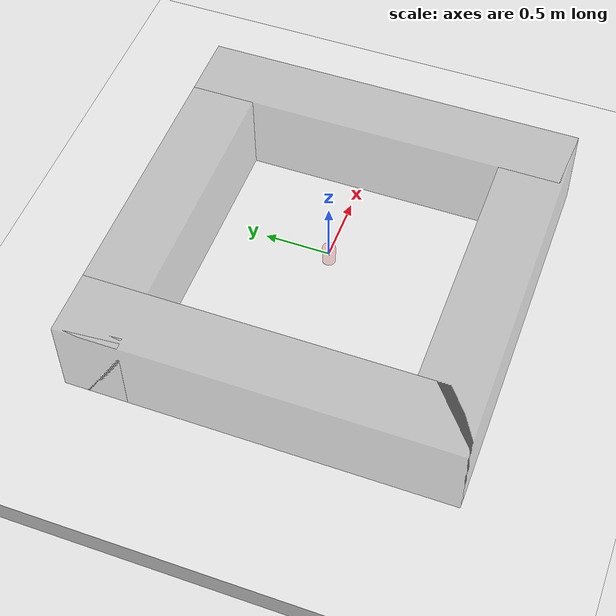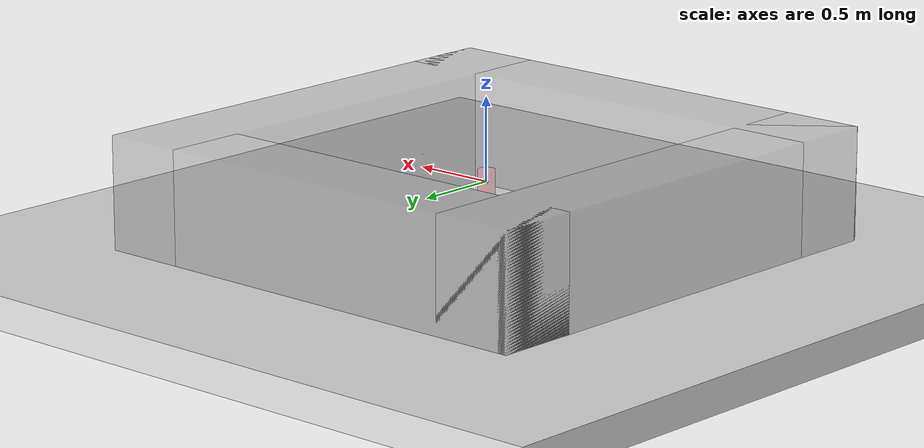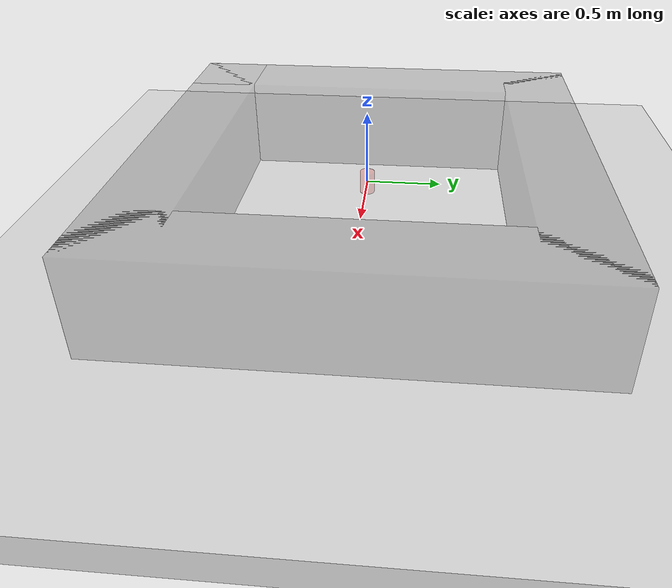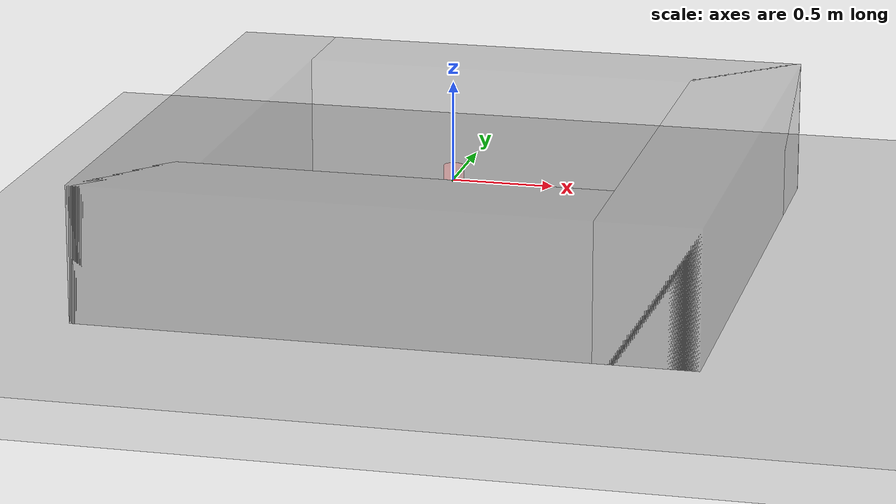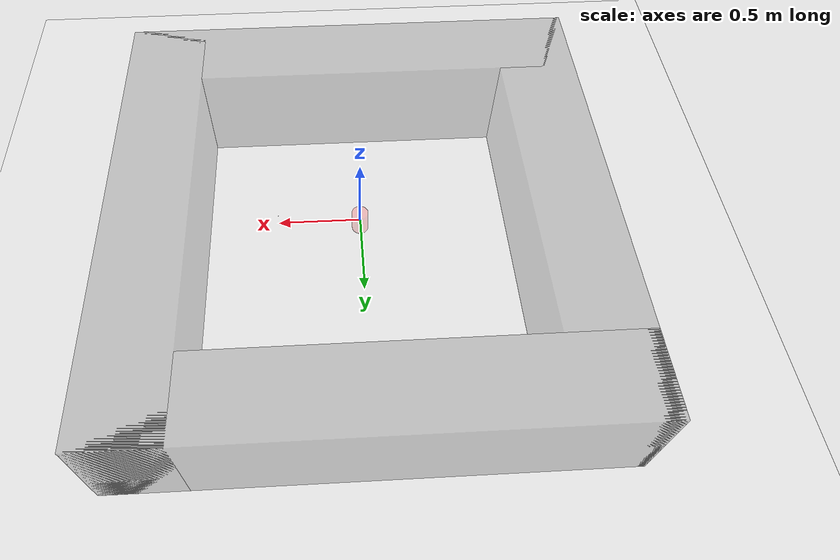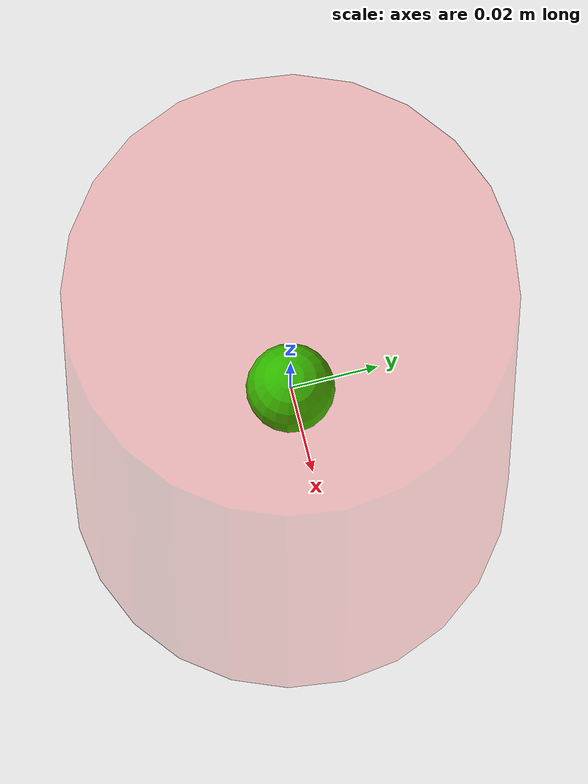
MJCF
<mujoco>
    <option gravity="0 0 0" viscosity="0.00002" timestep="0.02"/>
<default>
    <geom rgba="0 0 0 1"/>
</default>
    <worldbody>
    <light diffuse=".2 .2 .2" pos="0 0 20" dir="0 0 -1" mode="track"/>
    <body>
      <geom name='floor' pos='0 0 -0.475' size='10 10 .1' mass="10000" type='box' condim='3' rgba=".9 .9 .9 1" />
    <camera name="center" mode="fixed" pos="0 0 5" />
     <camera name="30" mode="fixed" pos="0 -5 10"  axisangle="1 0 0 30"    />
    </body>

    <body name="predator0" pos="0 0 0">
            <joint axis="1 0 0" damping="2.5" frictionloss="0" name="predator00" pos="0 0 0" type="slide"/>
            <joint axis="0 1 0" damping="2.5" frictionloss="0" name="predator01" pos="0 0 0" type="slide"/>
            <geom type="cylinder" size="0.05 0.075" mass="1" conaffinity="1" solimp="0.9 0.9999 0.001 0.5 1" solref="0.5 0.2" rgba="1 0 0 0.1"/>
            <site name="predator0" pos="-0 0 0" type="sphere" size="0.001"/>
    </body>

    <body name="prey0" pos="0 0 0">
            <joint axis="1 0 0" damping="2.5" frictionloss="0" name="prey00" pos="0 0 0" type="slide"/>
            <joint axis="0 1 0" damping="2.5" frictionloss="0" name="prey01" pos="0 0 0" type="slide"/>
            <geom type ="cylinder" size="0.05 0.075" mass="1" conaffinity="1" solimp="0.9 0.9999 0.001 0.5 1" solref="0.5 0.2" rgba="0 1 0 0.1"/>
            <site name="prey0" pos="0.5 0 0.075" type="sphere" size="0.001"/>
    </body>

    <body name="dragger0" pos="0 0 0">
            <joint axis="1 0 0" damping="2.5" frictionloss="0" name="dragger00" pos="0 0 0" type="slide"/>
            <joint axis="0 1 0" damping="2.5" frictionloss="0" name="dragger01" pos="0 0 0" type="slide"/>
            <geom type="cylinder" size="0.05 0.075" mass="1" conaffinity="1" solimp="0.9 0.9999 0.001 0.5 1" solref="0.5 0.2" rgba="0 0 1 0.1"/>
            <site name="dragger0" pos="-0 0 0" type="sphere" size="0.001"/>
    </body>

    <body name="distractor0" pos="0 0 0">
            <joint axis="1 0 0" damping="2.5" frictionloss="0" name="distractor00" pos="0 0 0" type="slide"/>
            <joint axis="0 1 0" damping="2.5" frictionloss="0" name="distractor01" pos="0 0 0" type="slide"/>
            <geom type="cylinder" size="0.05 0.075" mass="1" conaffinity="1" solimp="0.9 0.9999 0.001 0.5 1" solref="0.5 0.2" rgba="0 1 1 0.1"/>
            <site name="distractor0" pos="-0 0 0" type="sphere" size="0.001"/>
    </body>

    <body name="distractor1" pos="0 0 0">
            <joint axis="1 0 0" damping="2.5" frictionloss="0" name="distractor10" pos="0 0 0" type="slide"/>
            <joint axis="0 1 0" damping="2.5" frictionloss="0" name="distractor11" pos="0 0 0" type="slide"/>
            <geom type="cylinder" size="0.05 0.075" mass="1" conaffinity="1" solimp="0.9 0.9999 0.001 0.5 1" solref="0.5 0.2" rgba="0 1 1 0.1"/>
            <site name="distractor1" pos="-0 0 0" type="sphere" size="0.001"/>
    </body>

    <body name="distractor2" pos="0 0 0">
            <joint axis="1 0 0" damping="2.5" frictionloss="0" name="distractor20" pos="0 0 0" type="slide"/>
            <joint axis="0 1 0" damping="2.5" frictionloss="0" name="distractor21" pos="0 0 0" type="slide"/>
            <geom type="cylinder" size="0.05 0.075" mass="1" conaffinity="1" solimp="0.9 0.9999 0.001 0.5 1" solref="0.5 0.2" rgba="0 1 1 0.1"/>
            <site name="distractor2" pos="-0 0 0" type="sphere" size="0.001"/>
    </body>

<!--site part-->
    <body name="middle1" pos="0 0 0">
        <joint axis="1 0 0" damping="0" name="middle1x" pos="0 0 0" type="slide"/>
        <joint axis="0 1 0" damping="0" name="middle1y" pos="0 0 0" type="slide"/>
        <geom type="sphere" size="0.01" name="middle1" mass="0.1" rgba="0 .9 0 1"/>
        <site name="middle1" pos="0 0 0" type="sphere" size="0.01"/>
    </body>
    <body name="middle2" pos="0 0 0">
        <joint axis="1 0 0" damping="0" name="middle2x" pos="0 0 0" type="slide"/>
        <joint axis="0 1 0" damping="0" name="middle2y" pos="0 0 0" type="slide"/>
        <geom type="sphere" size="0.01" name="middle2" mass="0.1" rgba="0 .9 0 1"/>
        <site name="middle2" pos="0 0 0" type="sphere" size="0.01"/>
    </body>
    <body name="middle3" pos="0 0 0">
        <joint axis="1 0 0" damping="0" name="middle3x" pos="0 0 0" type="slide"/>
        <joint axis="0 1 0" damping="0" name="middle3y" pos="0 0 0" type="slide"/>
        <geom type="sphere" size="0.01" name="middle3" mass="0.1" rgba="0 .9 0 1"/>
        <site name="middle3" pos="0 0 0" type="sphere" size="0.01"/>
    </body>
    <body name="middle4" pos="0 0 0">
        <joint axis="1 0 0" damping="0" name="middle4x" pos="0 0 0" type="slide"/>
        <joint axis="0 1 0" damping="0" name="middle4y" pos="0 0 0" type="slide"/>
        <geom type="sphere" size="0.01" name="middle4" mass="0.1" rgba="0 .9 0 1"/>
        <site name="middle4" pos="0 0 0" type="sphere" size="0.01"/>
    </body>
        <body name="middle5" pos="0 0 0">
        <joint axis="1 0 0" damping="0" name="middle5x" pos="0 0 0" type="slide"/>
        <joint axis="0 1 0" damping="0" name="middle5y" pos="0 0 0" type="slide"/>
        <geom type="sphere" size="0.01" name="middle5" mass="0.1" rgba="0 .9 0 1"/>
        <site name="middle5" pos="0 0 0" type="sphere" size="0.01"/>
    </body>
    <body name="middle6" pos="0 0 0">
        <joint axis="1 0 0" damping="0" name="middle6x" pos="0 0 0" type="slide"/>
        <joint axis="0 1 0" damping="0" name="middle6y" pos="0 0 0" type="slide"/>
        <geom type="sphere" size="0.01" name="middle6" mass="0.1" rgba="0 .9 0 1"/>
        <site name="middle6" pos="0 0 0" type="sphere" size="0.01"/>
    </body>
    <body name="middle7" pos="0 0 0">
        <joint axis="1 0 0" damping="0" name="middle7x" pos="0 0 0" type="slide"/>
        <joint axis="0 1 0" damping="0" name="middle7y" pos="0 0 0" type="slide"/>
        <geom type="sphere" size="0.01" name="middle7" mass="0.1" rgba="0 .9 0 1"/>
        <site name="middle7" pos="0 0 0" type="sphere" size="0.01"/>
    </body>
    <body name="middle8" pos="0 0 0">
        <joint axis="1 0 0" damping="0" name="middle8x" pos="0 0 0" type="slide"/>
        <joint axis="0 1 0" damping="0" name="middle8y" pos="0 0 0" type="slide"/>
        <geom type="sphere" size="0.01" name="middle8" mass="0.1" rgba="0 .9 0 1"/>
        <site name="middle8" pos="0 0 0" type="sphere" size="0.01"/>
    </body>
    <body name="middle9" pos="0 0 0">
        <joint axis="1 0 0" damping="0" name="middle9x" pos="0 0 0" type="slide"/>
        <joint axis="0 1 0" damping="0" name="middle9y" pos="0 0 0" type="slide"/>
        <geom type="sphere" size="0.01" name="middle9" mass="0.1" rgba="0 .9 0 1"/>
        <site name="middle9" pos="0 0 0" type="sphere" size="0.01"/>
    </body>

    <body>
      <geom name='wall1' pos='-1.25 0 -0.2' size='.25 1.5 0.5' mass="10000" type='box' rgba="0.4 0.4 0.4 0.3" condim='3'/>
    </body>
    <body>
      <geom name='wall2' pos='1.25 0 -0.2' size='.25 1.5 0.5' mass="10000" type='box' rgba="0.4 0.4 0.4 0.3" condim='3'/>
    </body>
    <body>
      <geom name='wall3' pos='0 -1.25 -0.2' size='1.5 .25 0.5' mass="10000" type='box' rgba="0.4 0.4 0.4 0.3" condim='3'/>
    </body>
    <body>
      <geom name='wall4' pos='0 1.25 -0.2' size='1.5 .25 0.5' mass="10000" type='box' rgba="0.4 0.4 0.4 0.3" condim='3'/>
    </body>

    </worldbody>

<!--tendon part-->
    <tendon>
        <spatial limited="true" range="0 .05" stiffness="10" damping=".65" width="0.01">
            <site site="predator0"/>
            <site site="middle1"/>
        </spatial>
    </tendon>
    <tendon>
        <spatial limited="true" range="0 .05" stiffness="10" damping=".65" width="0.01">
            <site site="middle1"/>
            <site site="middle2"/>
        </spatial>
    </tendon>
    <tendon>
        <spatial limited="true" range="0 .05" stiffness="10" damping=".65" width="0.01">
            <site site="middle2"/>
            <site site="middle3"/>
        </spatial>
    </tendon>
    <tendon>
        <spatial limited="true" range="0 .05" stiffness="10" damping=".65" width="0.01">
            <site site="middle3"/>
            <site site="middle4"/>
        </spatial>
    </tendon>
    <tendon>
        <spatial limited="true" range="0 .05" stiffness="10" damping=".65" width="0.01">
            <site site="middle4"/>
            <site site="middle5"/>
        </spatial>
    </tendon>
    <tendon>
        <spatial limited="true" range="0 .05" stiffness="10" damping=".65" width="0.01">
            <site site="middle5"/>
            <site site="middle6"/>
        </spatial>
    </tendon>
    <tendon>
        <spatial limited="true" range="0 .05" stiffness="10" damping=".65" width="0.01">
            <site site="middle6"/>
            <site site="middle7"/>
        </spatial>
    </tendon>
    <tendon>
        <spatial limited="true" range="0 .05" stiffness="10" damping=".65" width="0.01">
            <site site="middle7"/>
            <site site="middle8"/>
        </spatial>
    </tendon>
    <tendon>
        <spatial limited="true" range="0 .05" stiffness="10" damping=".65" width="0.01">
            <site site="middle8"/>
            <site site="middle9"/>
        </spatial>
    </tendon>
    <tendon>
        <spatial limited="true" range="0 .05" stiffness="10" damping=".65" width="0.01">
            <site site="middle9"/>
            <site site="dragger0"/>
        </spatial>
    </tendon>

    <actuator>
        <motor gear="1" joint="predator00"/>
        <motor gear="1" joint="predator01"/>
        <motor gear="1" joint="prey00" />
        <motor gear="1" joint="prey01" />
        <motor gear="1" joint="dragger00" />
        <motor gear="1" joint="dragger01" />
        <motor gear="1" joint="distractor00" />
        <motor gear="1" joint="distractor01" />
        <motor gear="1" joint="distractor10" />
        <motor gear="1" joint="distractor11" />
        <motor gear="1" joint="distractor20" />
        <motor gear="1" joint="distractor21" />
    </actuator>

    <contact>

        <exclude body1="predator0" body2="middle1"/>
        <exclude body1="predator0" body2="middle2"/>
        <exclude body1="predator0" body2="middle3"/>
        <exclude body1="predator0" body2="middle4"/>
        <exclude body1="predator0" body2="middle5"/>
        <exclude body1="predator0" body2="middle6"/>
        <exclude body1="predator0" body2="middle7"/>
        <exclude body1="predator0" body2="middle8"/>
        <exclude body1="predator0" body2="middle9"/>

        <exclude body1="dragger0" body2="middle1"/>
        <exclude body1="dragger0" body2="middle2"/>
        <exclude body1="dragger0" body2="middle3"/>
        <exclude body1="dragger0" body2="middle4"/>
        <exclude body1="dragger0" body2="middle5"/>
        <exclude body1="dragger0" body2="middle6"/>
        <exclude body1="dragger0" body2="middle7"/>
        <exclude body1="dragger0" body2="middle8"/>
        <exclude body1="dragger0" body2="middle9"/>

        <exclude body1="middle1" body2="middle2"/>
        <exclude body1="middle1" body2="middle3"/>
        <exclude body1="middle1" body2="middle4"/>
        <exclude body1="middle1" body2="middle5"/>
        <exclude body1="middle1" body2="middle6"/>
        <exclude body1="middle1" body2="middle7"/>
        <exclude body1="middle1" body2="middle8"/>
        <exclude body1="middle1" body2="middle9"/>

        <exclude body1="middle2" body2="middle3"/>
        <exclude body1="middle2" body2="middle4"/>
        <exclude body1="middle2" body2="middle5"/>
        <exclude body1="middle2" body2="middle6"/>
        <exclude body1="middle2" body2="middle7"/>
        <exclude body1="middle2" body2="middle8"/>
        <exclude body1="middle2" body2="middle9"/>

        <exclude body1="middle3" body2="middle4"/>
        <exclude body1="middle3" body2="middle5"/>
        <exclude body1="middle3" body2="middle6"/>
        <exclude body1="middle3" body2="middle7"/>
        <exclude body1="middle3" body2="middle8"/>
        <exclude body1="middle3" body2="middle9"/>

        <exclude body1="middle4" body2="middle5"/>
        <exclude body1="middle4" body2="middle6"/>
        <exclude body1="middle4" body2="middle7"/>
        <exclude body1="middle4" body2="middle8"/>
        <exclude body1="middle4" body2="middle9"/>

        <exclude body1="middle5" body2="middle6"/>
        <exclude body1="middle5" body2="middle7"/>
        <exclude body1="middle5" body2="middle8"/>
        <exclude body1="middle5" body2="middle9"/>

        <exclude body1="middle6" body2="middle7"/>
        <exclude body1="middle6" body2="middle8"/>
        <exclude body1="middle6" body2="middle9"/>

        <exclude body1="middle7" body2="middle8"/>
        <exclude body1="middle7" body2="middle9"/>

        <exclude body1="middle8" body2="middle9"/>
    </contact>

</mujoco>
